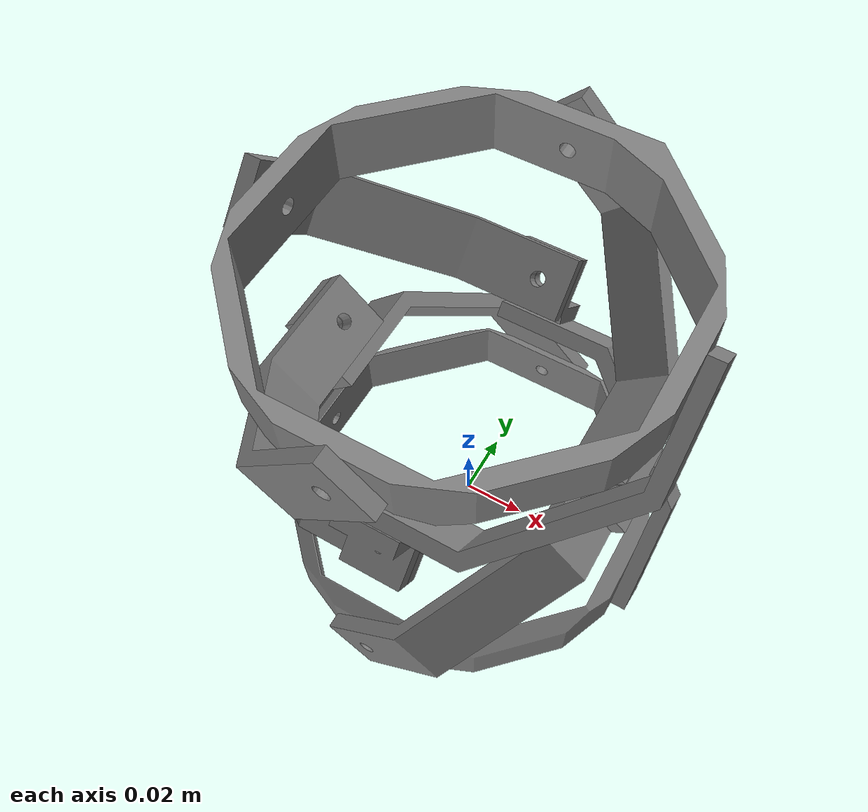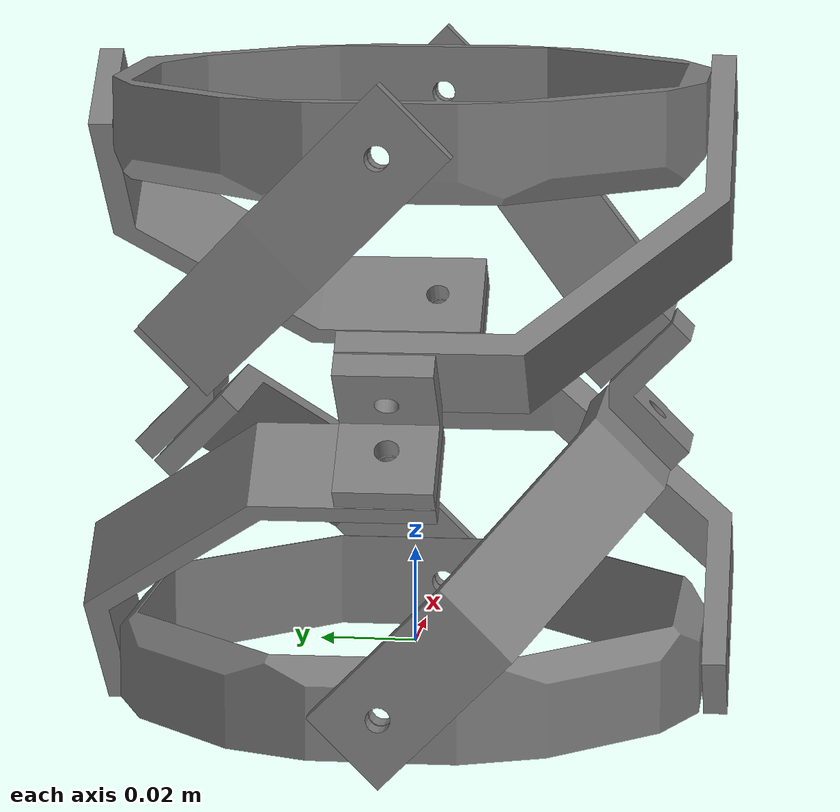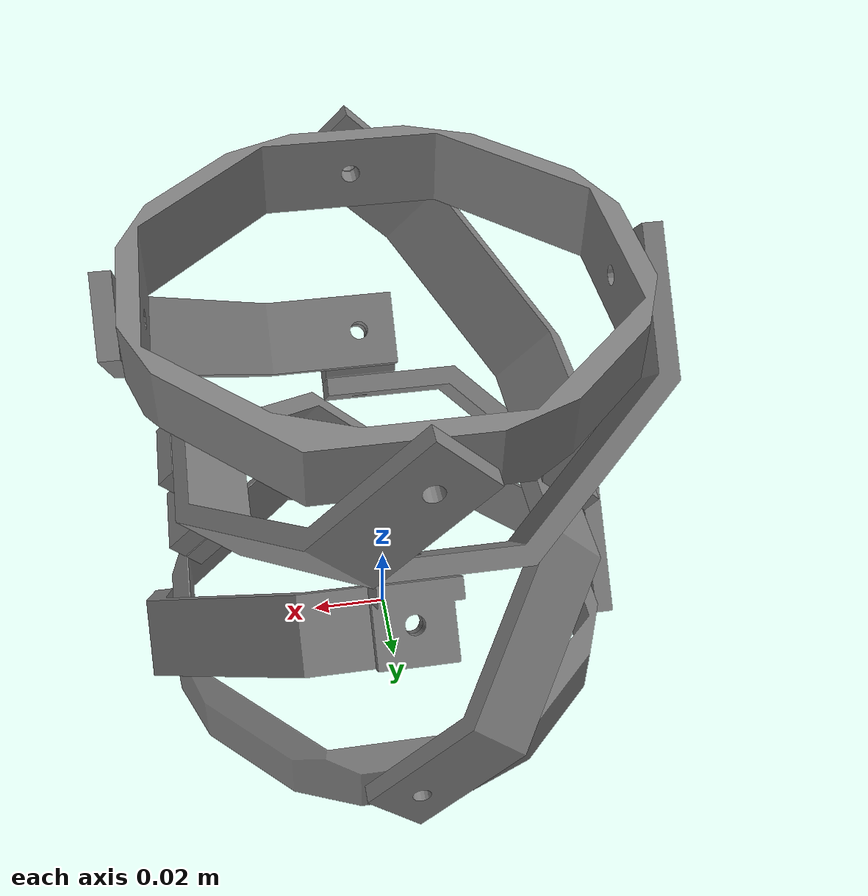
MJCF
<mujoco model="final_project_simplified">
  <compiler angle="radian" meshdir="meshes/"/>
  <asset>
    <mesh name="base_link" file="base_link.stl" scale="0.001 0.001 0.001"/>
    <mesh name="l_link_down4" file="l_link_down4.stl" scale="0.001 0.001 0.001"/>
    <mesh name="l_link_down1" file="l_link_down1.stl" scale="0.001 0.001 0.001"/>
    <mesh name="l_link_down2" file="l_link_down2.stl" scale="0.001 0.001 0.001"/>
    <mesh name="l_link_down3" file="l_link_down3.stl" scale="0.001 0.001 0.001"/>
    <mesh name="v_link4" file="v_link4.stl" scale="0.001 0.001 0.001"/>
    <mesh name="v_link1" file="v_link1.stl" scale="0.001 0.001 0.001"/>
    <mesh name="v_link2" file="v_link2.stl" scale="0.001 0.001 0.001"/>
    <mesh name="v_link3" file="v_link3.stl" scale="0.001 0.001 0.001"/>
    <mesh name="l_link_up1" file="l_link_up1.stl" scale="0.001 0.001 0.001"/>
    <mesh name="l_link_up2" file="l_link_up2.stl" scale="0.001 0.001 0.001"/>
    <mesh name="l_link_up3" file="l_link_up3.stl" scale="0.001 0.001 0.001"/>
    <mesh name="l_link_up4" file="l_link_up4.stl" scale="0.001 0.001 0.001"/>
    <mesh name="ring1" file="ring1.stl" scale="0.001 0.001 0.001"/>
  </asset>
  <worldbody>
    <body name="base_link">
      <inertial pos="0 0 -0.00104665" quat="0.5 0.5 -0.5 0.5" mass="0.238603" diaginertia="0.000823331 0.00041831 0.00041831"/>
      <geom type="mesh" contype="0" conaffinity="0" group="1" density="0" mesh="base_link"/>
      <geom type="mesh" mesh="base_link"/>
      <body name="l_link_down4" pos="0 -0.060355 0">
        <inertial pos="0.0280169 0.0207331 0.0280169" quat="0.353553 0.146447 -0.853553 0.353553" mass="0.0964305" diaginertia="0.000102991 9.92561e-05 1.02616e-05"/>
        <joint name="Revolute_55" pos="0 0 0" axis="0 1 0"/>
        <geom pos="0 0.060355 0" type="mesh" contype="0" conaffinity="0" group="1" density="0" mesh="l_link_down4"/>
        <geom pos="0 0.060355 0" type="mesh" mesh="l_link_down4"/>
        <body name="v_link3" pos="0 0.060355 -0.065755">
          <inertial pos="0.0491587 0 0.120755" mass="0.02882" diaginertia="2.8657e-06 2.33879e-06 1.49746e-06"/>
          <joint name="Revolute_62" pos="0 0 0" axis="-0.707107 0 -0.707107"/>
          <geom pos="0 0 0.065755" type="mesh" contype="0" conaffinity="0" group="1" density="0" mesh="v_link3"/>
          <geom pos="0 0 0.065755" type="mesh" mesh="v_link3"/>
          <body name="l_link_up2" pos="-0.046779 0 0.128976">
            <inertial pos="0.0747959 0.0396219 0.0187621" quat="0.353553 0.853553 -0.146447 0.353553" mass="0.0964305" diaginertia="0.000102991 9.92561e-05 1.02616e-05"/>
            <joint name="Revolute_68" pos="0 0 0" axis="0.707107 0 -0.707107"/>
            <geom pos="0.046779 0 -0.063221" type="mesh" contype="0" conaffinity="0" group="1" density="0" mesh="l_link_up2"/>
            <geom pos="0.046779 0 -0.063221" type="mesh" mesh="l_link_up2"/>
          </body>
        </body>
      </body>
      <body name="l_link_down1" pos="0.060355 0 0">
        <inertial pos="-0.0207331 0.0280169 0.0280169" quat="0.5 0.5 0.707107 -1.40718e-07" mass="0.0964305" diaginertia="0.000102991 9.92561e-05 1.02616e-05"/>
        <joint name="Revolute_56" pos="0 0 0" axis="-1 0 0"/>
        <geom pos="-0.060355 0 0" type="mesh" contype="0" conaffinity="0" group="1" density="0" mesh="l_link_down1"/>
        <geom pos="-0.060355 0 0" type="mesh" mesh="l_link_down1"/>
        <body name="v_link4" pos="-0.060355 0 -0.065755">
          <inertial pos="0 0.0491587 0.120755" quat="0.707107 0 0 0.707107" mass="0.02882" diaginertia="2.8657e-06 2.33879e-06 1.49746e-06"/>
          <joint name="Revolute_59" pos="0 0 0" axis="0 -0.707107 -0.707107"/>
          <geom pos="0 0 0.065755" type="mesh" contype="0" conaffinity="0" group="1" density="0" mesh="v_link4"/>
          <geom pos="0 0 0.065755" type="mesh" mesh="v_link4"/>
          <body name="l_link_up3" pos="0 -0.046779 0.128976">
            <inertial pos="-0.0396219 0.0747959 0.0187621" quat="-1.41001e-07 0.707107 0.5 0.5" mass="0.0964305" diaginertia="0.000102991 9.92561e-05 1.02616e-05"/>
            <joint name="Revolute_69" pos="0 0 0" axis="0 0.707107 -0.707107"/>
            <geom pos="0 0.046779 -0.063221" type="mesh" contype="0" conaffinity="0" group="1" density="0" mesh="l_link_up3"/>
            <geom pos="0 0.046779 -0.063221" type="mesh" mesh="l_link_up3"/>
          </body>
        </body>
      </body>
      <body name="l_link_down2" pos="0 0.060355 0">
        <inertial pos="-0.0280169 -0.0207331 0.0280169" quat="0.853553 0.353553 -0.353553 0.146447" mass="0.0964305" diaginertia="0.000102991 9.92561e-05 1.02616e-05"/>
        <joint name="Revolute_57" pos="0 0 0" axis="0 -1 0"/>
        <geom pos="0 -0.060355 0" type="mesh" contype="0" conaffinity="0" group="1" density="0" mesh="l_link_down2"/>
        <geom pos="0 -0.060355 0" type="mesh" mesh="l_link_down2"/>
        <body name="v_link1" pos="0 -0.060355 -0.065755">
          <inertial pos="-0.0491587 0 0.120755" mass="0.02882" diaginertia="2.8657e-06 2.33879e-06 1.49746e-06"/>
          <joint name="Revolute_60" pos="0 0 0" axis="0.707107 0 -0.707107"/>
          <geom pos="0 0 0.065755" type="mesh" contype="0" conaffinity="0" group="1" density="0" mesh="v_link1"/>
          <geom pos="0 0 0.065755" type="mesh" mesh="v_link1"/>
          <body name="l_link_up4" pos="0.046779 0 0.128976">
            <inertial pos="-0.0747959 -0.0396219 0.0187621" quat="0.146447 0.353553 -0.353553 0.853553" mass="0.0964305" diaginertia="0.000102991 9.92561e-05 1.02616e-05"/>
            <joint name="Revolute_70" pos="0 0 0" axis="-0.707107 0 -0.707107"/>
            <geom pos="-0.046779 0 -0.063221" type="mesh" contype="0" conaffinity="0" group="1" density="0" mesh="l_link_up4"/>
            <geom pos="-0.046779 0 -0.063221" type="mesh" mesh="l_link_up4"/>
          </body>
        </body>
      </body>
      <body name="l_link_down3" pos="-0.060355 0 0">
        <inertial pos="0.0207331 -0.0280169 0.0280169" quat="0.5 0.5 -1.41001e-07 0.707107" mass="0.0964305" diaginertia="0.000102991 9.92561e-05 1.02616e-05"/>
        <joint name="Revolute_58" pos="0 0 0" axis="1 0 0"/>
        <geom pos="0.060355 0 0" type="mesh" contype="0" conaffinity="0" group="1" density="0" mesh="l_link_down3"/>
        <geom pos="0.060355 0 0" type="mesh" mesh="l_link_down3"/>
        <body name="v_link2" pos="0.060355 0 -0.065755">
          <inertial pos="0 -0.0491587 0.120755" quat="0.707107 0 0 0.707107" mass="0.02882" diaginertia="2.8657e-06 2.33879e-06 1.49746e-06"/>
          <joint name="Revolute_61" pos="0 0 0" axis="0 0.707107 -0.707107"/>
          <geom pos="0 0 0.065755" type="mesh" contype="0" conaffinity="0" group="1" density="0" mesh="v_link2"/>
          <geom pos="0 0 0.065755" type="mesh" mesh="v_link2"/>
          <body name="l_link_up1" pos="0 0.046779 0.128976">
            <inertial pos="0.0396219 -0.0747959 0.0187621" quat="0.707107 -1.40718e-07 0.5 0.5" mass="0.0964305" diaginertia="0.000102991 9.92561e-05 1.02616e-05"/>
            <joint name="Revolute_67" pos="0 0 0" axis="0 -0.707107 -0.707107"/>
            <geom pos="0 -0.046779 -0.063221" type="mesh" contype="0" conaffinity="0" group="1" density="0" mesh="l_link_up1"/>
            <geom pos="0 -0.046779 -0.063221" type="mesh" mesh="l_link_up1"/>
            <body name="ring1" pos="0.060755 -0.124561 0.124561">
              <inertial pos="-0.0598337 0.0800063 -0.0767435" quat="0.587997 0.392808 -0.587879 0.392887" mass="0.248644" diaginertia="0.000857809 0.00045294 0.000418744"/>
              <joint name="Revolute_71" pos="0 0 0" axis="-1 0 0"/>
              <geom pos="-0.060755 0.077782 -0.187782" type="mesh" contype="0" conaffinity="0" group="1" density="0" mesh="ring1"/>
              <geom pos="-0.060755 0.077782 -0.187782" type="mesh" mesh="ring1"/>
            </body>
          </body>
        </body>
      </body>
    </body>
  </worldbody>
</mujoco>
